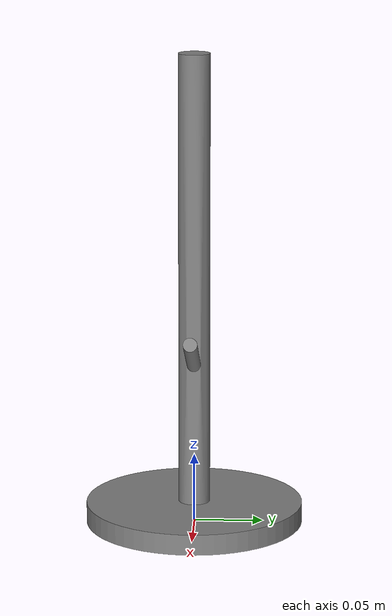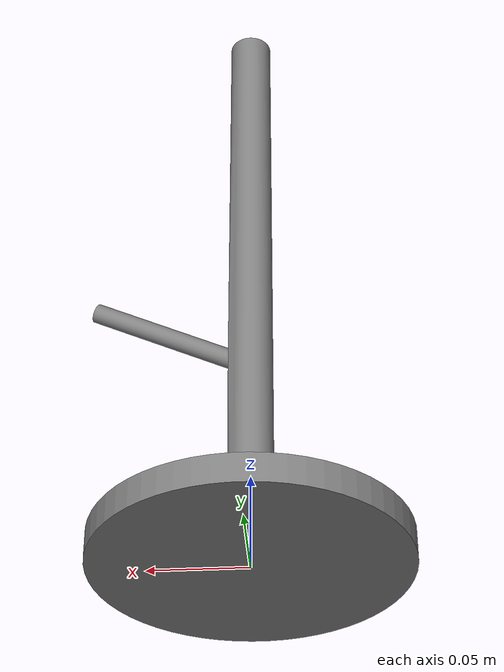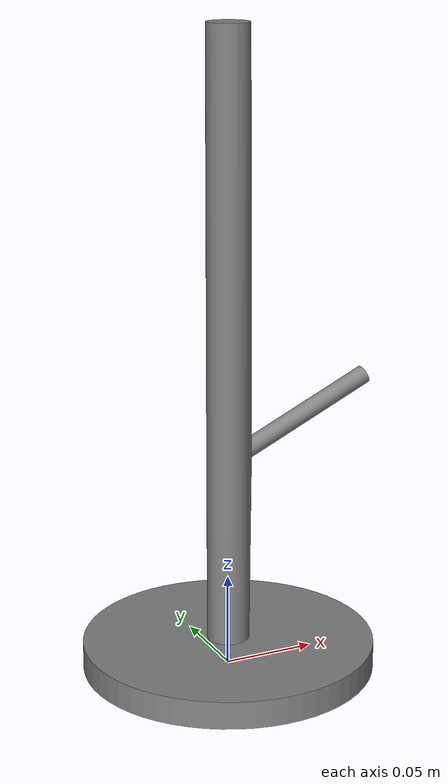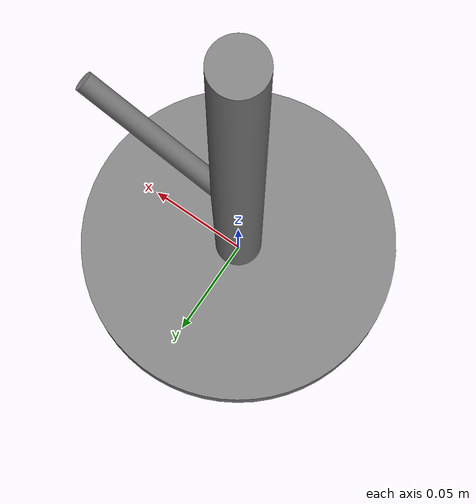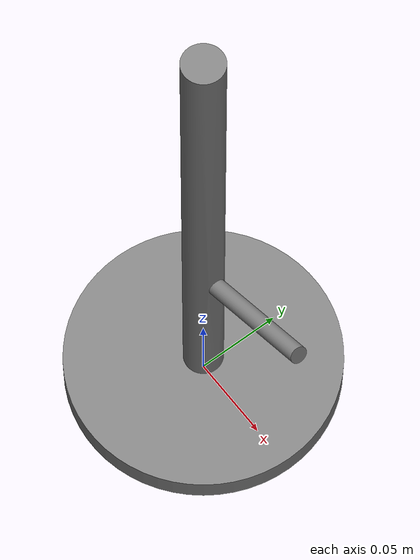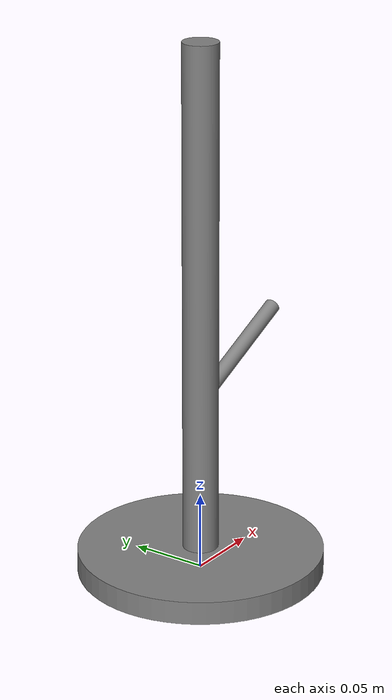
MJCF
<?xml version="1.0" ?>
<mujoco model="040_rack_2">
  <asset>
    <mesh name="040_rack_2_mesh" file="040_rack_2.stl" scale="1. 1. 1."/>
    <mesh name="040_rack_2_part_0" file="decomposed/040_rack_2_decomposed_0.stl" scale="1. 1. 1."/>
    <mesh name="040_rack_2_part_1" file="decomposed/040_rack_2_decomposed_1.stl" scale="1. 1. 1."/>
    <mesh name="040_rack_2_part_2" file="decomposed/040_rack_2_decomposed_2.stl" scale="1. 1. 1."/>
  </asset>
  <worldbody>
    <body name="040_rack_2">
      <geom name="040_rack_2_geom_0" type="mesh" mesh="040_rack_2_part_0"/>
      <geom name="040_rack_2_geom_1" type="mesh" mesh="040_rack_2_part_1"/>
      <geom name="040_rack_2_geom_2" type="mesh" mesh="040_rack_2_part_2"/>
    </body>
  </worldbody>
</mujoco>
